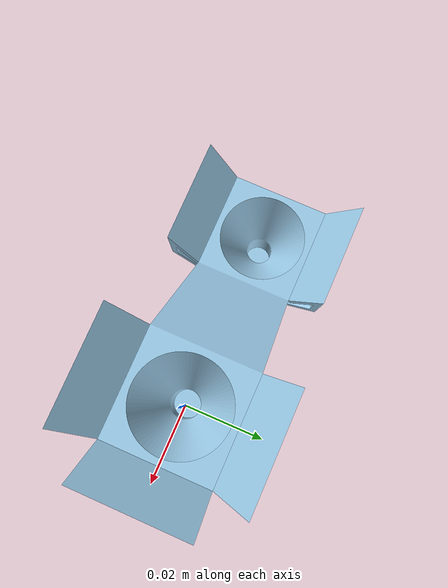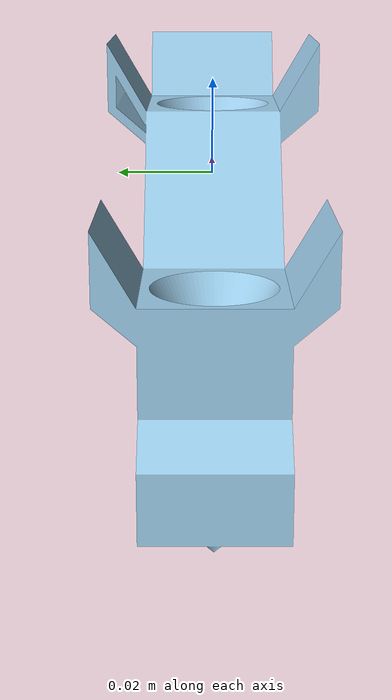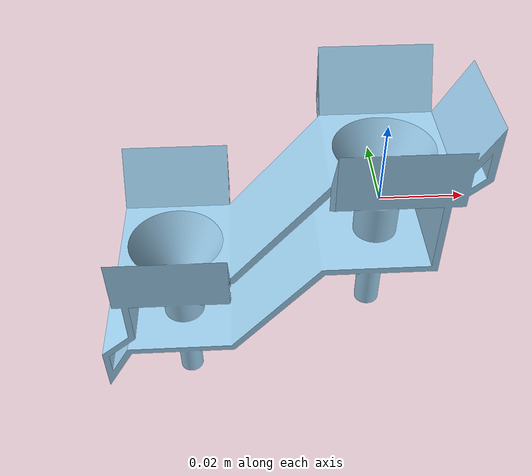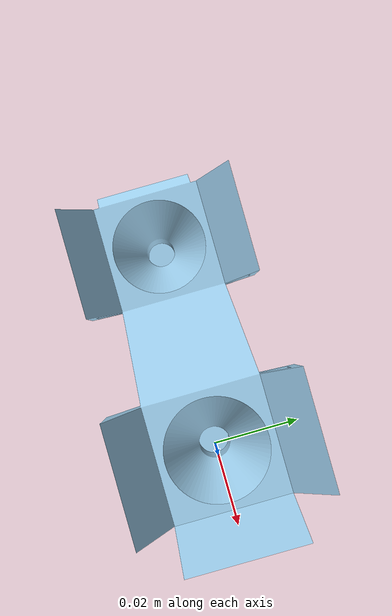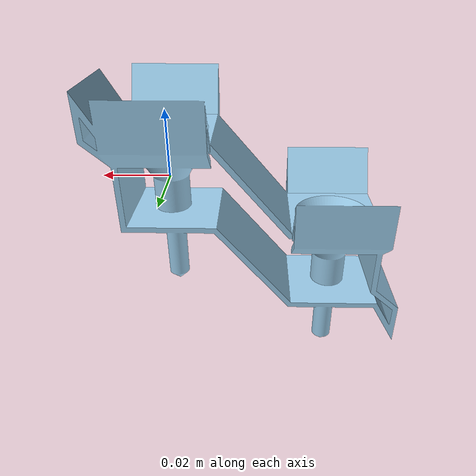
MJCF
<?xml version="1.0" ?>
<!-- Generated using onshape-to-robot -->
<!-- Onshape https://cad.onshape.com/documents/9aedd902d9f4dee95f6f5669/w/7949dab0ca2a5f2bbdbe781f/e/c3f00052bf61614c03dc045b -->
<mujoco model="goat_mk2">
  <compiler
    angle="radian"
    meshdir="assets"
    autolimits="true"
    inertiafromgeom="true"
    inertiagrouprange="3 3"/>
  <default>
    <default class="goat_mk2">
      <joint frictionloss="0.1" armature="0.005"/>
      <position kp="50" dampratio="1"/>
      <default class="visual">
        <geom type="mesh" contype="0" conaffinity="0" group="2"/>
      </default>
      <default class="collision">
        <geom group="3"/>
      </default>
    </default>
  </default>
  <worldbody>
    <!-- Link part_1 -->
    <body name="part_1" pos="0 0 0" quat="1 0 0 0" childclass="goat_mk2">
      <freejoint name="part_1_freejoint"/>
      <!-- Part part_1 -->
      <geom type="mesh" class="visual" pos="-0.0360284 2.18e-10 -0.0384847" quat="1 0 0 0" mesh="part_1" material="part_1_material"/>
      <geom type="mesh"
      class="collision"
      pos="-0.0360284 2.18e-10 -0.0384847"
      quat="1 0 0 0"
      mesh="part_1"
      material="part_1_material"
      density="1240"
      friction="0.8 0.005 0.0001"/>
    </body>
  </worldbody>
  <asset>
    <mesh file="part_1.stl"/>
    <material name="part_1_material" rgba="0.615686 0.811765 0.929412 1"/>
  </asset>
  <actuator/>
  <equality/>
</mujoco>
